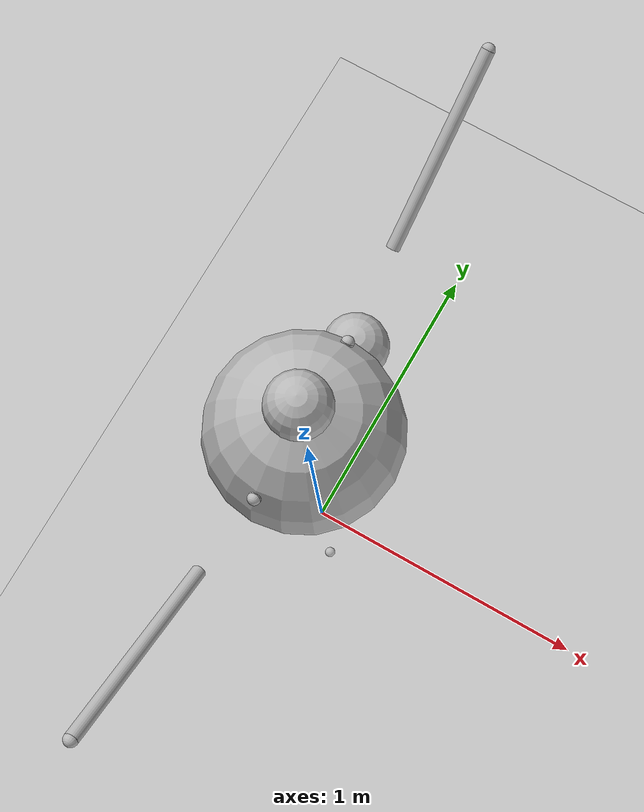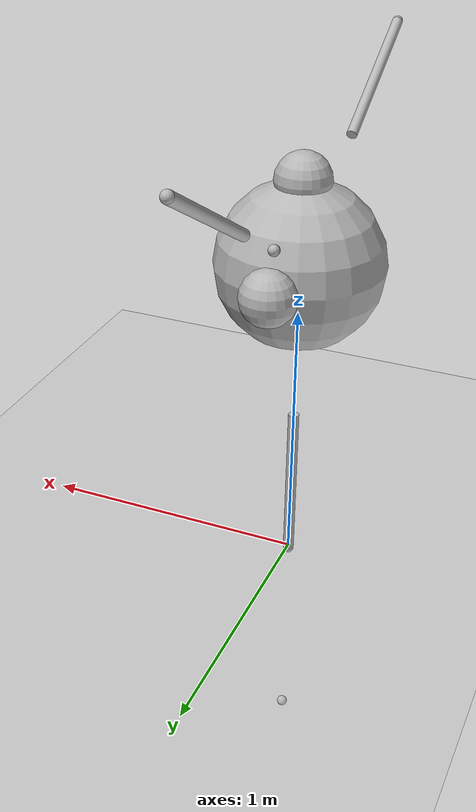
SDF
<sdf version="1.6">
 <world name="default">
  <light name="sun" type="directional">
   <pose>0 0 10 0 -0 0</pose>
   <diffuse>0.8 0.8 0.8 1</diffuse>
   <specular>0.2 0.2 0.2 1</specular>
   <attenuation>
    <range>1000</range>
    <constant>0.9</constant>
    <linear>0.01</linear>
    <quadratic>0.001</quadratic>
   </attenuation>
   <direction>-0.5 0.1 -0.9</direction>
  </light>
  <model name="ground_plane">
   <static>1</static>
   <link name="link">
    <collision name="collision">
     <geometry><plane><normal>0 0 1</normal><size>100 100</size></plane></geometry>
     <surface>
      <contact><collide_bitmask>65535</collide_bitmask></contact>
      <friction><ode><mu>100</mu><mu2>50</mu2></ode></friction>
     </surface>
    </collision>
    <visual name="visual">
     <cast_shadows>0</cast_shadows>
     <geometry><plane><normal>0 0 1</normal><size>100 100</size></plane></geometry>
     <material>
      <script><uri>file://media/materials/scripts/gazebo.material</uri><name>Gazebo/Grey</name></script>
     </material>
    </visual>
   </link>
  </model>
  <gravity>0 0 -9.8</gravity>
  <magnetic_field>6e-06 2.3e-05 -4.2e-05</magnetic_field>
  <atmosphere type="adiabatic"/>
  <physics name="default_physics" default="0" type="ode">
   <max_step_size>0.001</max_step_size>
   <real_time_factor>1</real_time_factor>
   <real_time_update_rate>1000</real_time_update_rate>
  </physics>
  <scene><ambient>0.4 0.4 0.4 1</ambient><background>0.7 0.7 0.7 1</background><shadows>1</shadows></scene>
  <audio><device>default</device></audio>
  <spherical_coordinates>
   <surface_model>EARTH_WGS84</surface_model>
   <latitude_deg>0</latitude_deg>
   <longitude_deg>0</longitude_deg>
   <elevation>0</elevation>
   <heading_deg>0</heading_deg>
  </spherical_coordinates>
  <model name="singlebot">
   <link name="base1_link">
    <inertial>
     <mass>0.01</mass>
     <inertia><ixx>0.01</ixx><ixy>0</ixy><ixz>0</ixz><iyy>0.01</iyy><iyz>0</iyz><izz>0.01</izz></inertia>
    </inertial>
    <visual name="base1_link_visual"><geometry><sphere><radius>0.02</radius></sphere></geometry></visual>
   </link>
   <joint name="base_joint" type="prismatic">
    <child>base1_link</child>
    <parent>world</parent>
    <axis>
     <xyz>0 0 1</xyz>
     <limit><lower>-1000</lower><upper>1000</upper><effort>0</effort><velocity>10</velocity></limit>
     <dynamics><spring_reference>0</spring_reference><spring_stiffness>0</spring_stiffness></dynamics>
     <use_parent_model_frame>1</use_parent_model_frame>
    </axis>
   </joint>
   <link name="base2_link">
    <pose>0 0 2 0 -0 0</pose>
    <inertial>
     <mass>0.1</mass>
     <inertia><ixx>0.1</ixx><ixy>0</ixy><ixz>0</ixz><iyy>0.1</iyy><iyz>0</iyz><izz>0.1</izz></inertia>
    </inertial>
    <visual name="base2_link_visual"><geometry><sphere><radius>0.02</radius></sphere></geometry></visual>
   </link>
   <joint name="base2_joint" type="prismatic">
    <child>base2_link</child>
    <parent>base1_link</parent>
    <axis>
     <xyz>0 1 0</xyz>
     <limit><lower>-1000</lower><upper>1000</upper><effort>0</effort><velocity>10</velocity></limit>
     <dynamics><spring_reference>0</spring_reference><spring_stiffness>0</spring_stiffness></dynamics>
     <use_parent_model_frame>1</use_parent_model_frame>
    </axis>
   </joint>
   <link name="robot_base">
    <pose>0 0 2 0 -0 0</pose>
    <inertial>
     <mass>3</mass>
     <inertia><ixx>0.8</ixx><ixy>0</ixy><ixz>0</ixz><iyy>0.8</iyy><iyz>0</iyz><izz>0.8</izz></inertia>
    </inertial>
    <collision name="robot_base_collision"><geometry><sphere><radius>0.3</radius></sphere></geometry></collision>
    <visual name="robot_base_visual">
     <geometry><sphere><radius>0.3</radius></sphere></geometry>
     <material><script><uri>__default__</uri><name>__default__</name></script></material>
    </visual>
    <visual name="robot_base_visual_1">
     <pose>0 0 0.3 0 -0 0</pose>
     <geometry><sphere><radius>0.1</radius></sphere></geometry>
     <material><script><uri>__default__</uri><name>__default__</name></script></material>
    </visual>
    <visual name="robot_base_visual_2">
     <pose>0 0.3 0 0 -0 0</pose>
     <geometry><sphere><radius>0.1</radius></sphere></geometry>
     <material><script><uri>__default__</uri><name>__default__</name></script></material>
    </visual>
    <sensor name="imu_sensor" type="imu">
     <always_on>1</always_on>
     <update_rate>100</update_rate>
     <visualize>1</visualize>
     <topic>__default_topic__</topic>
     <plugin name="imu_plugin" filename="libgazebo_ros_imu_sensor.so">
      <topicName>imu</topicName>
      <bodyName>robot_base</bodyName>
      <updateRateHZ>1000.0</updateRateHZ>
      <gaussianNoise>0.0</gaussianNoise>
      <xyzOffset>0 0 0</xyzOffset>
      <rpyOffset>0 0 0</rpyOffset>
      <frameName>robot_base</frameName>
      <initialOrientationAsReference>0</initialOrientationAsReference>
      <robotNamespace>/</robotNamespace>
     </plugin>
    </sensor>
   </link>
   <joint name="robot_joint" type="revolute">
    <child>robot_base</child>
    <parent>base2_link</parent>
    <axis>
     <xyz>1 0 0</xyz>
     <limit><lower>-1e+16</lower><upper>1e+16</upper></limit>
     <dynamics><spring_reference>0</spring_reference><spring_stiffness>0</spring_stiffness></dynamics>
     <use_parent_model_frame>1</use_parent_model_frame>
    </axis>
   </joint>
   <link name="hip_back">
    <pose>0 0 2 0 -0 0</pose>
    <inertial>
     <mass>0.3</mass>
     <inertia><ixx>0.05</ixx><ixy>0</ixy><ixz>0</ixz><iyy>0.05</iyy><iyz>0</iyz><izz>0.05</izz></inertia>
    </inertial>
    <collision name="hip_back_collision"><geometry><sphere><radius>0.02</radius></sphere></geometry></collision>
    <visual name="hip_back_visual"><geometry><sphere><radius>0.02</radius></sphere></geometry></visual>
   </link>
   <joint name="hip_back_joint" type="revolute">
    <child>hip_back</child>
    <parent>robot_base</parent>
    <axis>
     <xyz>0 0 1</xyz>
     <limit><lower>-1e+16</lower><upper>1e+16</upper></limit>
     <dynamics><spring_reference>0</spring_reference><spring_stiffness>0</spring_stiffness></dynamics>
     <use_parent_model_frame>1</use_parent_model_frame>
    </axis>
   </joint>
   <link name="leg_back">
    <pose>0 0 2 3.14159 9.3e-05 3.14159</pose>
    <inertial>
     <mass>0.3</mass>
     <inertia><ixx>0.05</ixx><ixy>0</ixy><ixz>0</ixz><iyy>0.05</iyy><iyz>0</iyz><izz>0.05</izz></inertia>
    </inertial>
    <collision name="leg_back_collision">
     <pose>0 0 0.15 0 -0 0</pose>
     <geometry><cylinder><length>0.3</length><radius>0.02</radius></cylinder></geometry>
    </collision>
    <collision name="leg_back_collision_1">
     <pose>0 0 0.3 0 -0 0</pose>
     <geometry><sphere><radius>0.02</radius></sphere></geometry>
    </collision>
    <visual name="leg_back_visual">
     <pose>0 0 0.15 0 -0 0</pose>
     <geometry><cylinder><length>0.3</length><radius>0.02</radius></cylinder></geometry>
    </visual>
    <visual name="leg_back_visual_1">
     <pose>0 0 0.3 0 -0 0</pose>
     <geometry><sphere><radius>0.02</radius></sphere></geometry>
    </visual>
   </link>
   <joint name="leg_back_joint" type="revolute">
    <child>leg_back</child>
    <parent>hip_back</parent>
    <axis>
     <xyz>1 0 9.3e-05</xyz>
     <limit><lower>-1e+16</lower><upper>1e+16</upper></limit>
     <dynamics><spring_reference>0</spring_reference><spring_stiffness>0</spring_stiffness></dynamics>
     <use_parent_model_frame>1</use_parent_model_frame>
    </axis>
   </joint>
   <link name="foot_back">
    <pose>5.6e-05 0 1.4 3.14159 9.3e-05 3.14159</pose>
    <inertial>
     <pose>0 0 -0.6 0 -0 0</pose>
     <mass>0.3</mass>
     <inertia><ixx>0.05</ixx><ixy>0</ixy><ixz>0</ixz><iyy>0.05</iyy><iyz>0</iyz><izz>0.05</izz></inertia>
    </inertial>
    <collision name="foot_back_collision">
     <pose>0 0 0.3 0 -0 0</pose>
     <geometry><cylinder><length>0.6</length><radius>0.02</radius></cylinder></geometry>
     <surface><friction><ode><mu>0.99</mu><mu2>0.99</mu2></ode></friction></surface>
    </collision>
    <collision name="foot_back_fixed_joint_lump__foot_bakc_collision_collision_1">
     <pose>0 0 0.6 0 -0 0</pose>
     <geometry><sphere><radius>0.02</radius></sphere></geometry>
    </collision>
    <visual name="foot_back_visual">
     <pose>0 0 0.3 0 -0 0</pose>
     <geometry><cylinder><length>0.6</length><radius>0.02</radius></cylinder></geometry>
     <material><script><uri>__default__</uri><name>__default__</name></script></material>
    </visual>
    <visual name="foot_back_visual_1">
     <pose>0 0 0.6 0 -0 0</pose>
     <geometry><sphere><radius>0.02</radius></sphere></geometry>
     <material><script><uri>__default__</uri><name>__default__</name></script></material>
    </visual>
    <sensor name="foot_contact_sensor" type="contact">
     <contact>
      <collision>foot_back_fixed_joint_lump__foot_bakc_collision_collision_1</collision>
      <topic>__default_topic__</topic>
     </contact>
     <plugin name="foot_back_plugin" filename="libgazebo_ros_bumper.so">
      <alwaysOn>1</alwaysOn>
      <bumperTopicName>/foot_back_contact</bumperTopicName>
      <frameName>world</frameName>
      <updateRate>100.0</updateRate>
      <robotNamespace>/</robotNamespace>
     </plugin>
    </sensor>
   </link>
   <joint name="foot_back_joint" type="prismatic">
    <child>foot_back</child>
    <parent>leg_back</parent>
    <axis>
     <xyz>9.3e-05 0 -1</xyz>
     <limit><lower>-1</lower><upper>1.2</upper><effort>1000</effort><velocity>4</velocity></limit>
     <dynamics><spring_reference>0</spring_reference><spring_stiffness>0</spring_stiffness></dynamics>
     <use_parent_model_frame>1</use_parent_model_frame>
    </axis>
   </joint>
   <link name="hip_left">
    <pose>0 0 2 2.0944 -0 0</pose>
    <inertial>
     <mass>0.3</mass>
     <inertia><ixx>0.05</ixx><ixy>0</ixy><ixz>0</ixz><iyy>0.05</iyy><iyz>0</iyz><izz>0.05</izz></inertia>
    </inertial>
    <collision name="hip_left_collision"><geometry><sphere><radius>0.02</radius></sphere></geometry></collision>
    <visual name="hip_left_visual"><geometry><sphere><radius>0.02</radius></sphere></geometry></visual>
   </link>
   <joint name="hip_left_joint" type="revolute">
    <child>hip_left</child>
    <parent>robot_base</parent>
    <axis>
     <xyz>0 -0.866025 -0.5</xyz>
     <limit><lower>-1e+16</lower><upper>1e+16</upper></limit>
     <dynamics><spring_reference>0</spring_reference><spring_stiffness>0</spring_stiffness></dynamics>
     <use_parent_model_frame>1</use_parent_model_frame>
    </axis>
   </joint>
   <link name="leg_left">
    <pose>0 0 2 1.0472 -4.6e-05 3.14151</pose>
    <inertial>
     <mass>0.3</mass>
     <inertia><ixx>0.05</ixx><ixy>0</ixy><ixz>0</ixz><iyy>0.05</iyy><iyz>0</iyz><izz>0.05</izz></inertia>
    </inertial>
    <collision name="leg_left_collision">
     <pose>0 0 0.15 0 -0 0</pose>
     <geometry><cylinder><length>0.3</length><radius>0.02</radius></cylinder></geometry>
    </collision>
    <collision name="leg_left_collision_1">
     <pose>0 0 0.3 0 -0 0</pose>
     <geometry><sphere><radius>0.02</radius></sphere></geometry>
    </collision>
    <visual name="leg_left_visual">
     <pose>0 0 0.15 0 -0 0</pose>
     <geometry><cylinder><length>0.3</length><radius>0.02</radius></cylinder></geometry>
    </visual>
    <visual name="leg_left_visual_1">
     <pose>0 0 0.3 0 -0 0</pose>
     <geometry><sphere><radius>0.02</radius></sphere></geometry>
    </visual>
   </link>
   <joint name="leg_left_joint" type="revolute">
    <child>leg_left</child>
    <parent>hip_left</parent>
    <axis>
     <xyz>1 -8e-05 -4.6e-05</xyz>
     <limit><lower>-1e+16</lower><upper>1e+16</upper></limit>
     <dynamics><spring_reference>0</spring_reference><spring_stiffness>0</spring_stiffness></dynamics>
     <use_parent_model_frame>1</use_parent_model_frame>
    </axis>
   </joint>
   <link name="foot_left">
    <pose>5.6e-05 0.519615 2.3 1.0472 -4.6e-05 3.14151</pose>
    <inertial>
     <pose>0 0 -0.6 0 -0 0</pose>
     <mass>0.3</mass>
     <inertia><ixx>0.05</ixx><ixy>0</ixy><ixz>0</ixz><iyy>0.05</iyy><iyz>0</iyz><izz>0.05</izz></inertia>
    </inertial>
    <collision name="foot_left_collision">
     <pose>0 0 0.3 0 -0 0</pose>
     <geometry><cylinder><length>0.6</length><radius>0.02</radius></cylinder></geometry>
     <surface><friction><ode><mu>0.99</mu><mu2>0.99</mu2></ode></friction></surface>
    </collision>
    <collision name="foot_left_collision_collision_1">
     <pose>0 0 0.6 0 -0 0</pose>
     <geometry><sphere><radius>0.02</radius></sphere></geometry>
     <surface><friction><ode><mu>0.99</mu><mu2>0.99</mu2></ode></friction></surface>
    </collision>
    <visual name="foot_left_visual">
     <pose>0 0 0.3 0 -0 0</pose>
     <geometry><cylinder><length>0.6</length><radius>0.02</radius></cylinder></geometry>
     <material><script><uri>__default__</uri><name>__default__</name></script></material>
    </visual>
    <visual name="foot_left_visual_1">
     <pose>0 0 0.6 0 -0 0</pose>
     <geometry><sphere><radius>0.02</radius></sphere></geometry>
     <material><script><uri>__default__</uri><name>__default__</name></script></material>
    </visual>
    <sensor name="foot_contact_sensor" type="contact">
     <contact><collision>foot_left_collision_collision_1</collision><topic>__default_topic__</topic></contact>
     <plugin name="foot_left_plugin" filename="libgazebo_ros_bumper.so">
      <alwaysOn>1</alwaysOn>
      <bumperTopicName>/foot_left_contact</bumperTopicName>
      <frameName>world</frameName>
      <updateRate>100.0</updateRate>
      <robotNamespace>/</robotNamespace>
     </plugin>
    </sensor>
   </link>
   <joint name="foot_left_joint" type="prismatic">
    <child>foot_left</child>
    <parent>leg_left</parent>
    <axis>
     <xyz>9.3e-05 0.866025 0.5</xyz>
     <limit><lower>-1</lower><upper>1.2</upper><effort>1000</effort><velocity>4</velocity></limit>
     <dynamics><spring_reference>0</spring_reference><spring_stiffness>0</spring_stiffness></dynamics>
     <use_parent_model_frame>1</use_parent_model_frame>
    </axis>
   </joint>
   <link name="hip_right">
    <pose>0 0 2 -2.0944 -0 0</pose>
    <inertial>
     <mass>0.3</mass>
     <inertia><ixx>0.05</ixx><ixy>0</ixy><ixz>0</ixz><iyy>0.05</iyy><iyz>0</iyz><izz>0.05</izz></inertia>
    </inertial>
    <collision name="hip_right_collision"><geometry><sphere><radius>0.02</radius></sphere></geometry></collision>
    <visual name="hip_right_visual"><geometry><sphere><radius>0.02</radius></sphere></geometry></visual>
   </link>
   <joint name="hip_right_joint" type="revolute">
    <child>hip_right</child>
    <parent>robot_base</parent>
    <axis>
     <xyz>0 0.866025 -0.5</xyz>
     <limit><lower>-1e+16</lower><upper>1e+16</upper></limit>
     <dynamics><spring_reference>0</spring_reference><spring_stiffness>0</spring_stiffness></dynamics>
     <use_parent_model_frame>1</use_parent_model_frame>
    </axis>
   </joint>
   <link name="leg_right">
    <pose>0 0 2 -1.0472 -4.6e-05 -3.14151</pose>
    <inertial>
     <mass>0.3</mass>
     <inertia><ixx>0.05</ixx><ixy>0</ixy><ixz>0</ixz><iyy>0.05</iyy><iyz>0</iyz><izz>0.05</izz></inertia>
    </inertial>
    <collision name="leg_right_collision">
     <pose>0 0 0.15 0 -0 0</pose>
     <geometry><cylinder><length>0.3</length><radius>0.02</radius></cylinder></geometry>
    </collision>
    <collision name="leg_right_collision_1">
     <pose>0 0 0.3 0 -0 0</pose>
     <geometry><sphere><radius>0.02</radius></sphere></geometry>
    </collision>
    <visual name="leg_right_visual">
     <pose>0 0 0.15 0 -0 0</pose>
     <geometry><cylinder><length>0.3</length><radius>0.02</radius></cylinder></geometry>
    </visual>
    <visual name="leg_right_visual_1">
     <pose>0 0 0.3 0 -0 0</pose>
     <geometry><sphere><radius>0.02</radius></sphere></geometry>
    </visual>
   </link>
   <joint name="leg_right_joint" type="revolute">
    <child>leg_right</child>
    <parent>hip_right</parent>
    <axis>
     <xyz>1 8e-05 -4.6e-05</xyz>
     <limit><lower>-1e+16</lower><upper>1e+16</upper></limit>
     <dynamics><spring_reference>0</spring_reference><spring_stiffness>0</spring_stiffness></dynamics>
     <use_parent_model_frame>1</use_parent_model_frame>
    </axis>
   </joint>
   <link name="foot_right">
    <pose>5.6e-05 -0.519615 2.3 -1.0472 -4.6e-05 -3.14151</pose>
    <inertial>
     <pose>0 0 -0.6 0 -0 0</pose>
     <mass>0.3</mass>
     <inertia><ixx>0.05</ixx><ixy>0</ixy><ixz>0</ixz><iyy>0.05</iyy><iyz>0</iyz><izz>0.05</izz></inertia>
    </inertial>
    <collision name="foot_right_collision">
     <pose>0 0 0.3 0 -0 0</pose>
     <geometry><cylinder><length>0.6</length><radius>0.02</radius></cylinder></geometry>
     <surface><friction><ode><mu>0.99</mu><mu2>0.99</mu2></ode></friction></surface>
    </collision>
    <collision name="foot_right_collision_collision_1">
     <pose>0 0 0.6 0 -0 0</pose>
     <geometry><sphere><radius>0.02</radius></sphere></geometry>
     <surface><friction><ode><mu>0.99</mu><mu2>0.99</mu2></ode></friction></surface>
    </collision>
    <visual name="foot_right_visual">
     <pose>0 0 0.3 0 -0 0</pose>
     <geometry><cylinder><length>0.6</length><radius>0.02</radius></cylinder></geometry>
     <material><script><uri>__default__</uri><name>__default__</name></script></material>
    </visual>
    <visual name="foot_right_visual_1">
     <pose>0 0 0.6 0 -0 0</pose>
     <geometry><sphere><radius>0.02</radius></sphere></geometry>
     <material><script><uri>__default__</uri><name>__default__</name></script></material>
    </visual>
    <sensor name="foot_contact_sensor" type="contact">
     <contact><collision>foot_right_collision_collision_1</collision><topic>__default_topic__</topic></contact>
     <plugin name="foot_right_plugin" filename="libgazebo_ros_bumper.so">
      <alwaysOn>1</alwaysOn>
      <bumperTopicName>/foot_right_contact</bumperTopicName>
      <frameName>world</frameName>
      <updateRate>100.0</updateRate>
      <robotNamespace>/</robotNamespace>
     </plugin>
    </sensor>
   </link>
   <joint name="foot_right_joint" type="prismatic">
    <child>foot_right</child>
    <parent>leg_right</parent>
    <axis>
     <xyz>9.3e-05 -0.866025 0.5</xyz>
     <limit><lower>-1</lower><upper>1.2</upper><effort>1000</effort><velocity>4</velocity></limit>
     <dynamics><spring_reference>0</spring_reference><spring_stiffness>0</spring_stiffness></dynamics>
     <use_parent_model_frame>1</use_parent_model_frame>
    </axis>
   </joint>
   <static>0</static>
   <plugin name="gazebo_ros_control" filename="libgazebo_ros_control.so">
    <robotNamespace>/singlebot</robotNamespace>
   </plugin>
   <pose>-0 -0 -0.81172 -0 -0 -0</pose>
  </model>
 </world>
</sdf>
